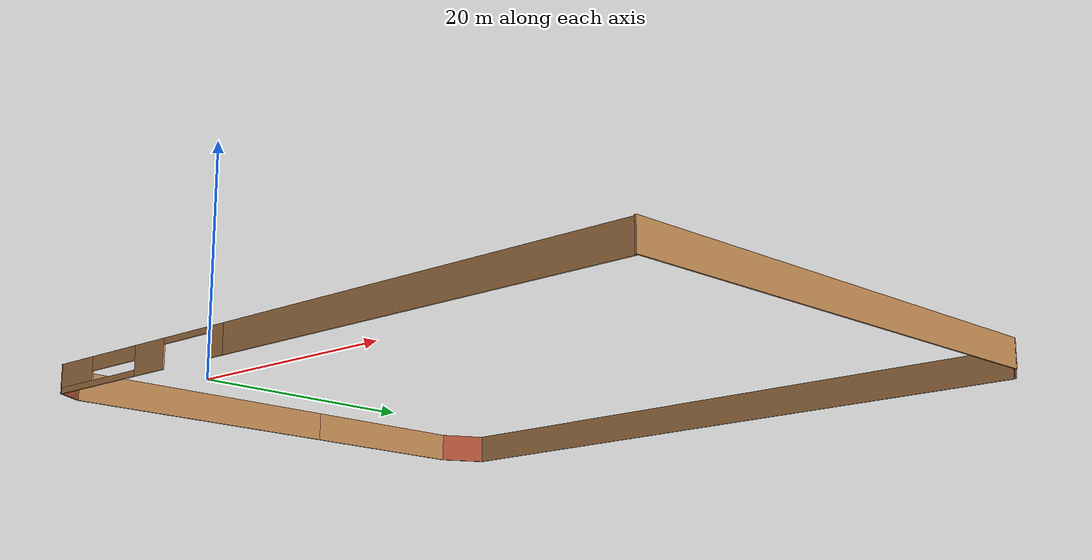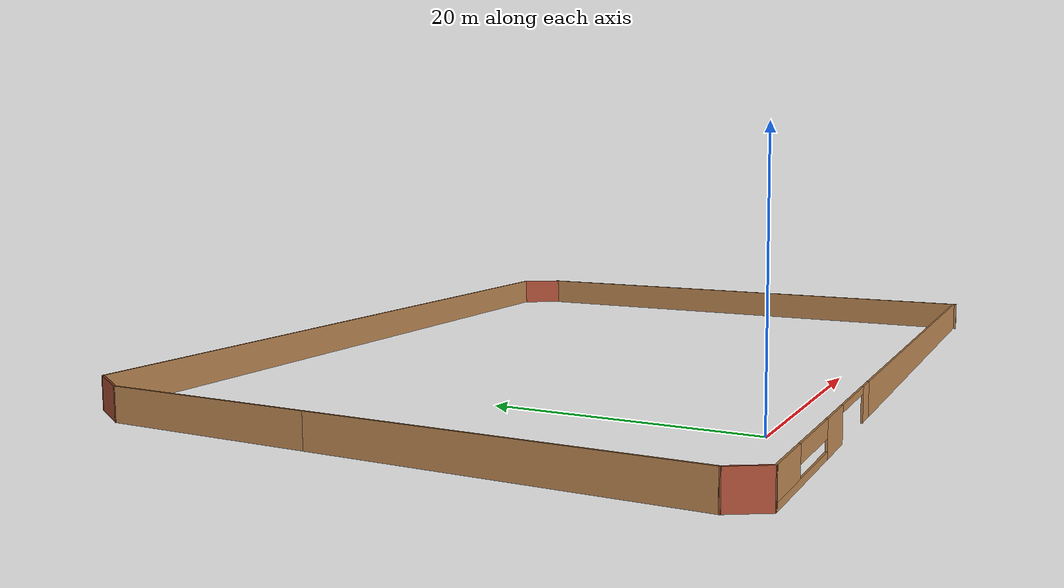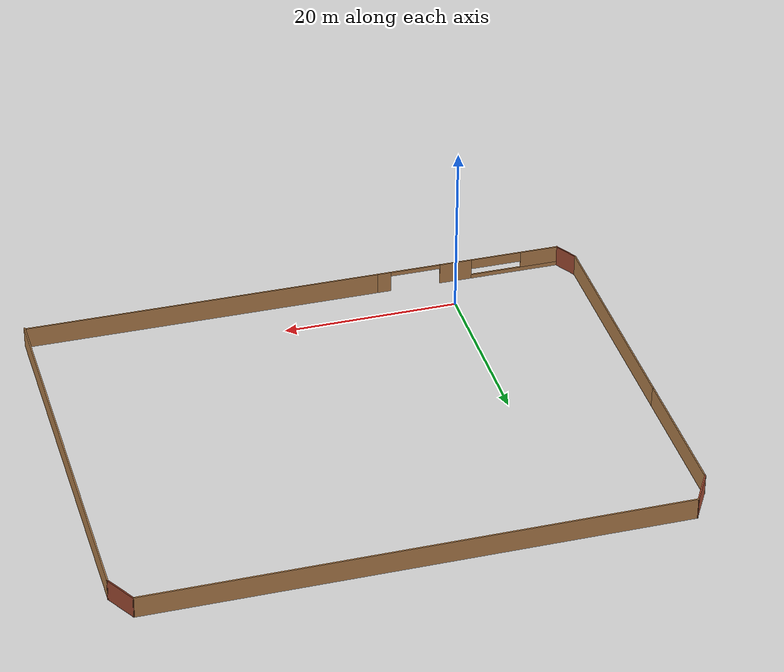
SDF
<?xml version='1.0'?>
<sdf version='1.7'>
  <model name='cararena'>
    <pose>16.8532 19.5719 0 0 -0 0</pose>
    <link name='Wall_12'>
      <pose>-19.6875 -24.2655 0 0 -0 3.14159</pose>
      <visual name='Wall_12_Visual_0'>
        <pose>-10.0083 0 1.25 0 -0 0</pose>
        <geometry>
          <box>
            <size>1.73333 0.15 2.5</size>
          </box>
        </geometry>
        <material>
          <script>
            <uri>file://media/materials/scripts/gazebo.material</uri>
            <name>Gazebo/Wood</name>
          </script>
          <ambient>1 1 1 1</ambient>
        </material>
        <meta>
          <layer>0</layer>
        </meta>
      </visual>
      <collision name='Wall_12_Collision_0'>
        <geometry>
          <box>
            <size>1.73333 0.15 2.5</size>
          </box>
        </geometry>
        <pose>-10.0083 0 1.25 0 -0 0</pose>
      </collision>
      <visual name='Wall_12_Visual_1'>
        <pose>-1.43789 0 1.25 0 -0 0</pose>
        <geometry>
          <box>
            <size>3.80018 0.15 2.5</size>
          </box>
        </geometry>
        <material>
          <script>
            <uri>file://media/materials/scripts/gazebo.material</uri>
            <name>Gazebo/Wood</name>
          </script>
          <ambient>1 1 1 1</ambient>
        </material>
        <meta>
          <layer>0</layer>
        </meta>
      </visual>
      <collision name='Wall_12_Collision_1'>
        <geometry>
          <box>
            <size>3.80018 0.15 2.5</size>
          </box>
        </geometry>
        <pose>-1.43789 0 1.25 0 -0 0</pose>
      </collision>
      <visual name='Wall_12_Visual_2'>
        <pose>5.6686 0 0.25 0 -0 0</pose>
        <geometry>
          <box>
            <size>10.4128 0.15 0.5</size>
          </box>
        </geometry>
        <material>
          <script>
            <uri>file://media/materials/scripts/gazebo.material</uri>
            <name>Gazebo/Wood</name>
          </script>
          <ambient>1 1 1 1</ambient>
        </material>
        <meta>
          <layer>0</layer>
        </meta>
      </visual>
      <collision name='Wall_12_Collision_2'>
        <geometry>
          <box>
            <size>10.4128 0.15 0.5</size>
          </box>
        </geometry>
        <pose>5.6686 0 0.25 0 -0 0</pose>
      </collision>
      <visual name='Wall_12_Visual_3'>
        <pose>8.62634 0 1.5 0 -0 0</pose>
        <geometry>
          <box>
            <size>4.49732 0.15 2</size>
          </box>
        </geometry>
        <material>
          <script>
            <uri>file://media/materials/scripts/gazebo.material</uri>
            <name>Gazebo/Wood</name>
          </script>
          <ambient>1 1 1 1</ambient>
        </material>
        <meta>
          <layer>0</layer>
        </meta>
      </visual>
      <collision name='Wall_12_Collision_3'>
        <geometry>
          <box>
            <size>4.49732 0.15 2</size>
          </box>
        </geometry>
        <pose>8.62634 0 1.5 0 -0 0</pose>
      </collision>
      <visual name='Wall_12_Visual_4'>
        <pose>3.41994 0 1.9 0 -0 0</pose>
        <geometry>
          <box>
            <size>5.91548 0.15 1.2</size>
          </box>
        </geometry>
        <material>
          <script>
            <uri>file://media/materials/scripts/gazebo.material</uri>
            <name>Gazebo/Wood</name>
          </script>
          <ambient>1 1 1 1</ambient>
        </material>
        <meta>
          <layer>0</layer>
        </meta>
      </visual>
      <collision name='Wall_12_Collision_4'>
        <geometry>
          <box>
            <size>5.91548 0.15 1.2</size>
          </box>
        </geometry>
        <pose>3.41994 0 1.9 0 -0 0</pose>
      </collision>
      <visual name='Wall_12_Visual_5'>
        <pose>-6.23983 0 2.25 0 -0 0</pose>
        <geometry>
          <box>
            <size>5.80369 0.15 0.5</size>
          </box>
        </geometry>
        <material>
          <script>
            <uri>file://media/materials/scripts/gazebo.material</uri>
            <name>Gazebo/Wood</name>
          </script>
          <ambient>1 1 1 1</ambient>
        </material>
        <meta>
          <layer>0</layer>
        </meta>
      </visual>
      <collision name='Wall_12_Collision_5'>
        <geometry>
          <box>
            <size>5.80369 0.15 0.5</size>
          </box>
        </geometry>
        <pose>-6.23983 0 2.25 0 -0 0</pose>
      </collision>
    </link>
    <link name='Wall_13'>
      <collision name='Wall_13_Collision'>
        <geometry>
          <box>
            <size>3 0.15 2.5</size>
          </box>
        </geometry>
        <pose>0 0 1.25 0 -0 0</pose>
      </collision>
      <visual name='Wall_13_Visual'>
        <pose>0 0 1.25 0 -0 0</pose>
        <geometry>
          <box>
            <size>3 0.15 2.5</size>
          </box>
        </geometry>
        <material>
          <script>
            <uri>file://media/materials/scripts/gazebo.material</uri>
            <name>Gazebo/Bricks</name>
          </script>
          <ambient>1 1 1 1</ambient>
        </material>
        <meta>
          <layer>0</layer>
        </meta>
      </visual>
      <pose>-31.2 -23.0314 0 0 -0 2.0944</pose>
    </link>
    <link name='Wall_14'>
      <collision name='Wall_14_Collision'>
        <geometry>
          <box>
            <size>26.75 0.15 2.5</size>
          </box>
        </geometry>
        <pose>0 0 1.25 0 -0 0</pose>
      </collision>
      <visual name='Wall_14_Visual'>
        <pose>0 0 1.25 0 -0 0</pose>
        <geometry>
          <box>
            <size>26.75 0.15 2.5</size>
          </box>
        </geometry>
        <material>
          <script>
            <uri>file://media/materials/scripts/gazebo.material</uri>
            <name>Gazebo/Wood</name>
          </script>
          <ambient>1 1 1 1</ambient>
        </material>
        <meta>
          <layer>0</layer>
        </meta>
      </visual>
      <pose>-31.9125 -8.49733 0 0 -0 1.5708</pose>
    </link>
    <link name='Wall_15'>
      <collision name='Wall_15_Collision'>
        <geometry>
          <box>
            <size>16.25 0.15 2.5</size>
          </box>
        </geometry>
        <pose>0 0 1.25 0 -0 0</pose>
      </collision>
      <visual name='Wall_15_Visual'>
        <pose>0 0 1.25 0 -0 0</pose>
        <geometry>
          <box>
            <size>16.25 0.15 2.5</size>
          </box>
        </geometry>
        <material>
          <script>
            <uri>file://media/materials/scripts/gazebo.material</uri>
            <name>Gazebo/Wood</name>
          </script>
          <ambient>1 1 1 1</ambient>
        </material>
        <meta>
          <layer>0</layer>
        </meta>
      </visual>
      <pose>-31.9125 12.8527 0 0 -0 1.5708</pose>
    </link>
    <link name='Wall_16'>
      <collision name='Wall_16_Collision'>
        <geometry>
          <box>
            <size>4.25 0.15 2.5</size>
          </box>
        </geometry>
        <pose>0 0 1.25 0 -0 0</pose>
      </collision>
      <visual name='Wall_16_Visual'>
        <pose>0 0 1.25 0 -0 0</pose>
        <geometry>
          <box>
            <size>4.25 0.15 2.5</size>
          </box>
        </geometry>
        <material>
          <script>
            <uri>file://media/materials/scripts/gazebo.material</uri>
            <name>Gazebo/Bricks</name>
          </script>
          <ambient>1 1 1 1</ambient>
        </material>
        <meta>
          <layer>0</layer>
        </meta>
      </visual>
      <pose>-30.8875 22.678 0 0 -0 1.0472</pose>
    </link>
    <link name='Wall_17'>
      <collision name='Wall_17_Collision'>
        <geometry>
          <box>
            <size>60 0.15 2.5</size>
          </box>
        </geometry>
        <pose>0 0 1.25 0 -0 0</pose>
      </collision>
      <visual name='Wall_17_Visual'>
        <pose>0 0 1.25 0 -0 0</pose>
        <geometry>
          <box>
            <size>60 0.15 2.5</size>
          </box>
        </geometry>
        <material>
          <script>
            <uri>file://media/materials/scripts/gazebo.material</uri>
            <name>Gazebo/Wood</name>
          </script>
          <ambient>1 1 1 1</ambient>
        </material>
        <meta>
          <layer>0</layer>
        </meta>
      </visual>
      <pose>0.0625 24.4534 0 0 -0 0</pose>
    </link>
    <link name='Wall_18'>
      <collision name='Wall_18_Collision'>
        <geometry>
          <box>
            <size>4 0.15 2.5</size>
          </box>
        </geometry>
        <pose>0 0 1.25 0 -0 0</pose>
      </collision>
      <visual name='Wall_18_Visual'>
        <pose>0 0 1.25 0 -0 0</pose>
        <geometry>
          <box>
            <size>4 0.15 2.5</size>
          </box>
        </geometry>
        <material>
          <script>
            <uri>file://media/materials/scripts/gazebo.material</uri>
            <name>Gazebo/Bricks</name>
          </script>
          <ambient>1 1 1 1</ambient>
        </material>
        <meta>
          <layer>0</layer>
        </meta>
      </visual>
      <pose>30.95 22.7863 0 0 -0 -1.0472</pose>
    </link>
    <link name='Wall_19'>
      <collision name='Wall_19_Collision'>
        <geometry>
          <box>
            <size>45.75 0.15 2.5</size>
          </box>
        </geometry>
        <pose>0 0 1.25 0 -0 0</pose>
      </collision>
      <visual name='Wall_19_Visual'>
        <pose>0 0 1.25 0 -0 0</pose>
        <geometry>
          <box>
            <size>45.75 0.15 2.5</size>
          </box>
        </geometry>
        <material>
          <script>
            <uri>file://media/materials/scripts/gazebo.material</uri>
            <name>Gazebo/Wood</name>
          </script>
          <ambient>1 1 1 1</ambient>
        </material>
        <meta>
          <layer>0</layer>
        </meta>
      </visual>
      <pose>31.9125 -1.68082 0 0 -0 -1.5708</pose>
    </link>
    <link name='Wall_67'>
      <collision name='Wall_67_Collision'>
        <geometry>
          <box>
            <size>40.75 0.15 2.5</size>
          </box>
        </geometry>
        <pose>0 0 1.25 0 -0 0</pose>
      </collision>
      <visual name='Wall_67_Visual'>
        <pose>0 0 1.25 0 -0 0</pose>
        <geometry>
          <box>
            <size>40.75 0.15 2.5</size>
          </box>
        </geometry>
        <material>
          <script>
            <uri>file://media/materials/scripts/gazebo.material</uri>
            <name>Gazebo/Wood</name>
          </script>
          <ambient>1 1 1 1</ambient>
        </material>
        <meta>
          <layer>0</layer>
        </meta>
      </visual>
      <pose>11.4125 -24.2655 0 0 -0 0</pose>
    </link>
    <static>1</static>
  </model>
</sdf>
